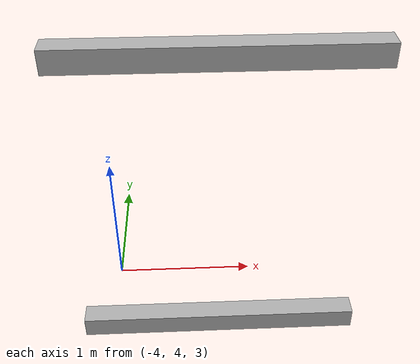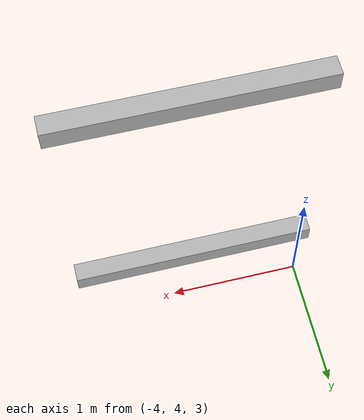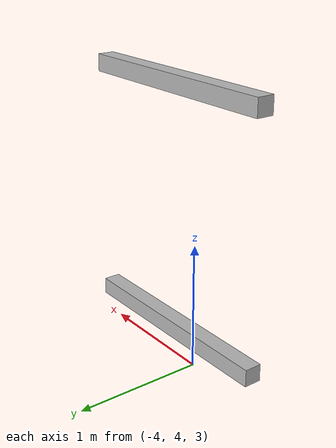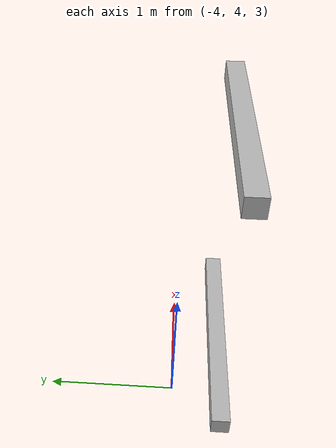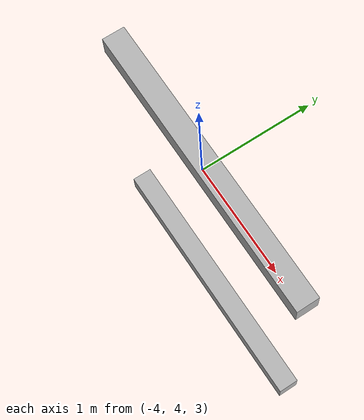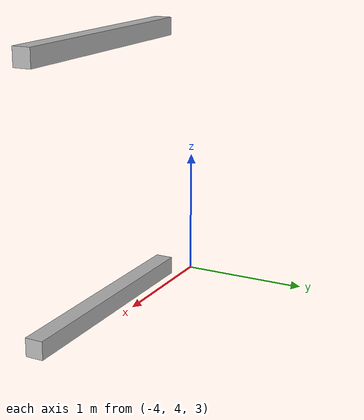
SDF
<sdf version="1.7">
 <world name="default">
  <model name="orthogonal_747_2.000.15_TS">
   <static>1</static>
   <link name="x_link_2_4_1">
    <inertial>
     <mass>1</mass>
     <inertia>
      <ixx>0.166667</ixx>
      <ixy>0</ixy>
      <ixz>0</ixz>
      <iyy>0.166667</iyy>
      <iyz>0</iyz>
      <izz>0.166667</izz>
     </inertia>
    </inertial>
    <pose>3.225 8.6 5.375 0 -0 0</pose>
    <visual name="visual_0">
     <laser_retro>2416</laser_retro>
     <geometry><box><size>2 1e-06 0.15</size></box></geometry>
     <material>
      <script><name>Gazebo/Grey</name><uri>file://media/materials/scripts/gazebo.material</uri></script>
      <shader type="pixel"><normal_map>__default__</normal_map></shader>
      <ambient>0.678 0.498 0.659 1</ambient>
      <diffuse>0.7 0.7 0.7 1</diffuse>
      <specular>0.01 0.01 0.01 1</specular>
      <emissive>0 0 0 1</emissive>
     </material>
     <pose>0 -0.075 0 0 -0 0</pose>
     <transparency>1</transparency>
    </visual>
    <visual name="visual_1">
     <laser_retro>2417</laser_retro>
     <geometry><box><size>2 1e-06 0.15</size></box></geometry>
     <material>
      <script><name>Gazebo/Grey</name><uri>file://media/materials/scripts/gazebo.material</uri></script>
      <shader type="pixel"><normal_map>__default__</normal_map></shader>
      <ambient>0.447 0.624 0.812 1</ambient>
      <diffuse>0.7 0.7 0.7 1</diffuse>
      <specular>0.01 0.01 0.01 1</specular>
      <emissive>0 0 0 1</emissive>
     </material>
     <pose>0 0.075 0 0 -0 0</pose>
     <transparency>1</transparency>
    </visual>
    <visual name="visual_2">
     <laser_retro>2418</laser_retro>
     <geometry><box><size>2 0.15 1e-06</size></box></geometry>
     <material>
      <script><name>Gazebo/Grey</name><uri>file://media/materials/scripts/gazebo.material</uri></script>
      <shader type="pixel"><normal_map>__default__</normal_map></shader>
      <ambient>0.988 0.686 0.243 1</ambient>
      <diffuse>0.7 0.7 0.7 1</diffuse>
      <specular>0.01 0.01 0.01 1</specular>
      <emissive>0 0 0 1</emissive>
     </material>
     <pose>0 0 -0.075 0 -0 0</pose>
     <transparency>1</transparency>
    </visual>
    <visual name="visual_3">
     <laser_retro>2419</laser_retro>
     <geometry><box><size>1e-06 0.15 0.15</size></box></geometry>
     <material>
      <script><name>Gazebo/Grey</name><uri>file://media/materials/scripts/gazebo.material</uri></script>
      <shader type="pixel"><normal_map>__default__</normal_map></shader>
      <ambient>0.988 0.914 0.31 1</ambient>
      <diffuse>0.7 0.7 0.7 1</diffuse>
      <specular>0.01 0.01 0.01 1</specular>
      <emissive>0 0 0 1</emissive>
     </material>
     <pose>1 0 0 0 -0 0</pose>
     <transparency>1</transparency>
    </visual>
    <visual name="visual_4">
     <laser_retro>2420</laser_retro>
     <geometry><box><size>2 0.15 1e-06</size></box></geometry>
     <material>
      <script><name>Gazebo/Grey</name><uri>file://media/materials/scripts/gazebo.material</uri></script>
      <shader type="pixel"><normal_map>__default__</normal_map></shader>
      <ambient>0.937 0.161 0.161 1</ambient>
      <diffuse>0.7 0.7 0.7 1</diffuse>
      <specular>0.01 0.01 0.01 1</specular>
      <emissive>0 0 0 1</emissive>
     </material>
     <pose>0 0 0.075 0 -0 0</pose>
     <transparency>1</transparency>
    </visual>
    <visual name="visual_5">
     <laser_retro>2421</laser_retro>
     <geometry><box><size>1e-06 0.15 0.15</size></box></geometry>
     <material>
      <script><name>Gazebo/Grey</name><uri>file://media/materials/scripts/gazebo.material</uri></script>
      <shader type="pixel"><normal_map>__default__</normal_map></shader>
      <ambient>0.541 0.886 0.204 1</ambient>
      <diffuse>0.7 0.7 0.7 1</diffuse>
      <specular>0.01 0.01 0.01 1</specular>
      <emissive>0 0 0 1</emissive>
     </material>
     <pose>-1 0 0 0 -0 0</pose>
     <transparency>1</transparency>
    </visual>
    <visual name="visual_texture">
     <geometry><box><size>1.9998 0.149985 0.149985</size></box></geometry>
     <material>
      <script>
       <uri>model://BASE_MODELS/simple_block_v2_textured/materials/scripts</uri>
       <uri>model://BASE_MODELS/simple_block_v2_textured/materials/textures</uri>
       <name>metal</name>
      </script>
     </material>
     <laser_retro>2422</laser_retro>
    </visual>
    <collision name="collision">
     <geometry><box><size>2 0.15 0.15</size></box></geometry>
     <surface>
      <friction>
       <ode><mu>1</mu><mu2>1</mu2><fdir1>0 0 0</fdir1><slip1>0</slip1><slip2>0</slip2></ode>
       <torsional>
        <coefficient>1</coefficient>
        <patch_radius>0</patch_radius>
        <surface_radius>0</surface_radius>
        <use_patch_radius>1</use_patch_radius>
        <ode><slip>0</slip></ode>
       </torsional>
      </friction>
      <bounce><restitution_coefficient>0</restitution_coefficient><threshold>1e+06</threshold></bounce>
      <contact>
       <collide_without_contact>0</collide_without_contact>
       <collide_without_contact_bitmask>1</collide_without_contact_bitmask>
       <collide_bitmask>1</collide_bitmask>
       <ode>
        <soft_cfm>0</soft_cfm>
        <soft_erp>0.2</soft_erp>
        <kp>1e+13</kp>
        <kd>1</kd>
        <max_vel>0.01</max_vel>
        <min_depth>0</min_depth>
       </ode>
       <bullet>
        <split_impulse>1</split_impulse>
        <split_impulse_penetration_threshold>-0.01</split_impulse_penetration_threshold>
        <soft_cfm>0</soft_cfm>
        <soft_erp>0.2</soft_erp>
        <kp>1e+13</kp>
        <kd>1</kd>
       </bullet>
      </contact>
     </surface>
    </collision>
   </link>
   <link name="x_link_3_4_1">
    <inertial>
     <mass>1</mass>
     <inertia>
      <ixx>0.166667</ixx>
      <ixy>0</ixy>
      <ixz>0</ixz>
      <iyy>0.166667</iyy>
      <iyz>0</iyz>
      <izz>0.166667</izz>
     </inertia>
    </inertial>
    <pose>3.225 8.6 7.525 0 -0 0</pose>
    <visual name="visual_0">
     <laser_retro>3319</laser_retro>
     <geometry><box><size>2 1e-06 0.15</size></box></geometry>
     <material>
      <script><name>Gazebo/Grey</name><uri>file://media/materials/scripts/gazebo.material</uri></script>
      <shader type="pixel"><normal_map>__default__</normal_map></shader>
      <ambient>0.678 0.498 0.659 1</ambient>
      <diffuse>0.7 0.7 0.7 1</diffuse>
      <specular>0.01 0.01 0.01 1</specular>
      <emissive>0 0 0 1</emissive>
     </material>
     <pose>0 -0.075 0 0 -0 0</pose>
     <transparency>1</transparency>
    </visual>
    <visual name="visual_1">
     <laser_retro>3320</laser_retro>
     <geometry><box><size>2 1e-06 0.15</size></box></geometry>
     <material>
      <script><name>Gazebo/Grey</name><uri>file://media/materials/scripts/gazebo.material</uri></script>
      <shader type="pixel"><normal_map>__default__</normal_map></shader>
      <ambient>0.447 0.624 0.812 1</ambient>
      <diffuse>0.7 0.7 0.7 1</diffuse>
      <specular>0.01 0.01 0.01 1</specular>
      <emissive>0 0 0 1</emissive>
     </material>
     <pose>0 0.075 0 0 -0 0</pose>
     <transparency>1</transparency>
    </visual>
    <visual name="visual_2">
     <laser_retro>3321</laser_retro>
     <geometry><box><size>2 0.15 1e-06</size></box></geometry>
     <material>
      <script><name>Gazebo/Grey</name><uri>file://media/materials/scripts/gazebo.material</uri></script>
      <shader type="pixel"><normal_map>__default__</normal_map></shader>
      <ambient>0.988 0.686 0.243 1</ambient>
      <diffuse>0.7 0.7 0.7 1</diffuse>
      <specular>0.01 0.01 0.01 1</specular>
      <emissive>0 0 0 1</emissive>
     </material>
     <pose>0 0 -0.075 0 -0 0</pose>
     <transparency>1</transparency>
    </visual>
    <visual name="visual_3">
     <laser_retro>3322</laser_retro>
     <geometry><box><size>1e-06 0.15 0.15</size></box></geometry>
     <material>
      <script><name>Gazebo/Grey</name><uri>file://media/materials/scripts/gazebo.material</uri></script>
      <shader type="pixel"><normal_map>__default__</normal_map></shader>
      <ambient>0.988 0.914 0.31 1</ambient>
      <diffuse>0.7 0.7 0.7 1</diffuse>
      <specular>0.01 0.01 0.01 1</specular>
      <emissive>0 0 0 1</emissive>
     </material>
     <pose>1 0 0 0 -0 0</pose>
     <transparency>1</transparency>
    </visual>
    <visual name="visual_4">
     <laser_retro>3323</laser_retro>
     <geometry><box><size>2 0.15 1e-06</size></box></geometry>
     <material>
      <script><name>Gazebo/Grey</name><uri>file://media/materials/scripts/gazebo.material</uri></script>
      <shader type="pixel"><normal_map>__default__</normal_map></shader>
      <ambient>0.937 0.161 0.161 1</ambient>
      <diffuse>0.7 0.7 0.7 1</diffuse>
      <specular>0.01 0.01 0.01 1</specular>
      <emissive>0 0 0 1</emissive>
     </material>
     <pose>0 0 0.075 0 -0 0</pose>
     <transparency>1</transparency>
    </visual>
    <visual name="visual_5">
     <laser_retro>3324</laser_retro>
     <geometry><box><size>1e-06 0.15 0.15</size></box></geometry>
     <material>
      <script><name>Gazebo/Grey</name><uri>file://media/materials/scripts/gazebo.material</uri></script>
      <shader type="pixel"><normal_map>__default__</normal_map></shader>
      <ambient>0.541 0.886 0.204 1</ambient>
      <diffuse>0.7 0.7 0.7 1</diffuse>
      <specular>0.01 0.01 0.01 1</specular>
      <emissive>0 0 0 1</emissive>
     </material>
     <pose>-1 0 0 0 -0 0</pose>
     <transparency>1</transparency>
    </visual>
    <visual name="visual_texture">
     <geometry><box><size>1.9998 0.149985 0.149985</size></box></geometry>
     <material>
      <script>
       <uri>model://BASE_MODELS/simple_block_v2_textured/materials/scripts</uri>
       <uri>model://BASE_MODELS/simple_block_v2_textured/materials/textures</uri>
       <name>metal</name>
      </script>
     </material>
     <laser_retro>3325</laser_retro>
    </visual>
    <collision name="collision">
     <geometry><box><size>2 0.15 0.15</size></box></geometry>
     <surface>
      <friction>
       <ode><mu>1</mu><mu2>1</mu2><fdir1>0 0 0</fdir1><slip1>0</slip1><slip2>0</slip2></ode>
       <torsional>
        <coefficient>1</coefficient>
        <patch_radius>0</patch_radius>
        <surface_radius>0</surface_radius>
        <use_patch_radius>1</use_patch_radius>
        <ode><slip>0</slip></ode>
       </torsional>
      </friction>
      <bounce><restitution_coefficient>0</restitution_coefficient><threshold>1e+06</threshold></bounce>
      <contact>
       <collide_without_contact>0</collide_without_contact>
       <collide_without_contact_bitmask>1</collide_without_contact_bitmask>
       <collide_bitmask>1</collide_bitmask>
       <ode>
        <soft_cfm>0</soft_cfm>
        <soft_erp>0.2</soft_erp>
        <kp>1e+13</kp>
        <kd>1</kd>
        <max_vel>0.01</max_vel>
        <min_depth>0</min_depth>
       </ode>
       <bullet>
        <split_impulse>1</split_impulse>
        <split_impulse_penetration_threshold>-0.01</split_impulse_penetration_threshold>
        <soft_cfm>0</soft_cfm>
        <soft_erp>0.2</soft_erp>
        <kp>1e+13</kp>
        <kd>1</kd>
       </bullet>
      </contact>
     </surface>
    </collision>
   </link>
   <pose>-6.47624 -5 -2.5 0 -0 0</pose>
  </model>
 </world>
</sdf>
